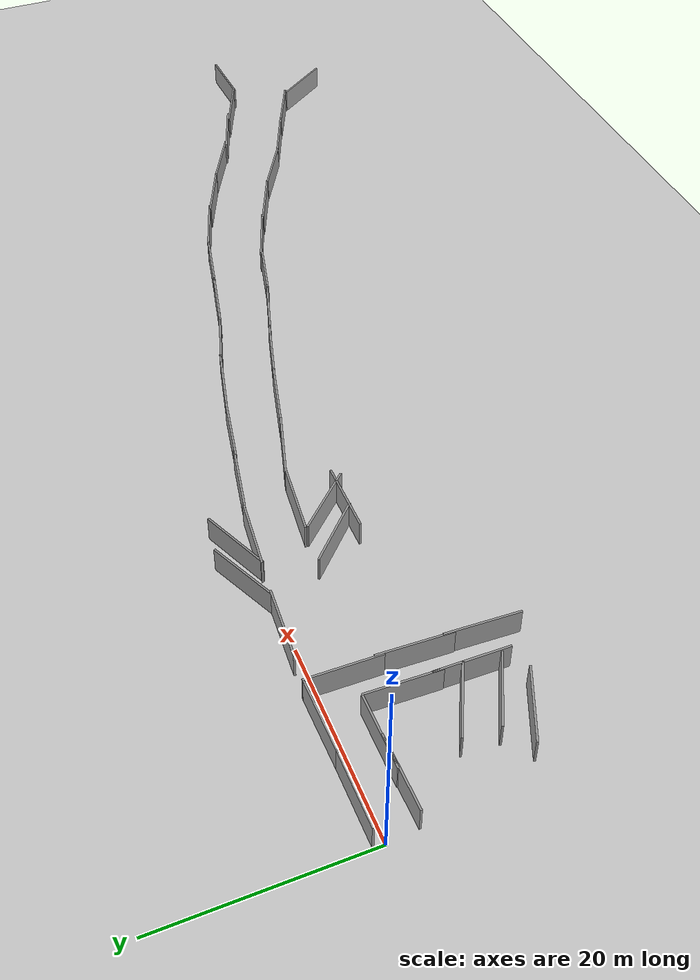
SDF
<sdf version="1.4">
 <world name="default">
  <light name="sun" type="directional">
   <pose>0 0 10 0 -0 0</pose>
   <diffuse>0.8 0.8 0.8 1</diffuse>
   <specular>0.2 0.2 0.2 1</specular>
   <attenuation>
    <range>1000</range>
    <constant>0.9</constant>
    <linear>0.01</linear>
    <quadratic>0.001</quadratic>
   </attenuation>
   <direction>-0.5 0.1 -0.9</direction>
  </light>
  <model name="ground_plane">
   <static>1</static>
   <link name="link">
    <collision name="collision">
     <geometry><plane><normal>0 0 1</normal><size>100 100</size></plane></geometry>
     <surface><friction><ode><mu>100</mu><mu2>50</mu2></ode></friction></surface>
    </collision>
    <visual name="visual">
     <cast_shadows>0</cast_shadows>
     <geometry><plane><normal>0 0 1</normal><size>100 100</size></plane></geometry>
     <material>
      <script><uri>file://media/materials/scripts/gazebo.material</uri><name>Gazebo/Grey</name></script>
     </material>
    </visual>
    <velocity_decay><linear>0</linear><angular>0</angular></velocity_decay>
   </link>
  </model>
  <physics type="ode">
   <max_step_size>0.001</max_step_size>
   <real_time_factor>1</real_time_factor>
   <real_time_update_rate>1000</real_time_update_rate>
   <gravity>0 0 -9.8</gravity>
  </physics>
  <scene><ambient>0.4 0.4 0.4 1</ambient><background>0.7 0.7 0.7 1</background><shadows>1</shadows></scene>
  <spherical_coordinates>
   <surface_model>EARTH_WGS84</surface_model>
   <latitude_deg>0</latitude_deg>
   <longitude_deg>0</longitude_deg>
   <elevation>0</elevation>
   <heading_deg>0</heading_deg>
  </spherical_coordinates>
  <model name="grey_wall">
   <static>1</static>
   <link name="link">
    <pose>0 0 1.4 0 -0 0</pose>
    <collision name="collision"><geometry><box><size>7.5 0.2 2.8</size></box></geometry></collision>
    <visual name="visual">
     <cast_shadows>0</cast_shadows>
     <geometry><box><size>7.5 0.2 2.8</size></box></geometry>
     <material>
      <script>
       <uri>model://grey_wall/materials/scripts</uri>
       <uri>model://grey_wall/materials/textures</uri>
       <name>vrc/grey_wall</name>
      </script>
     </material>
    </visual>
    <velocity_decay><linear>0</linear><angular>0</angular></velocity_decay>
   </link>
   <pose>4 1 -0 0 -0 0.004023</pose>
  </model>
  <model name="grey_wall_0">
   <static>1</static>
   <link name="link">
    <pose>0 0 1.4 0 -0 0</pose>
    <collision name="collision"><geometry><box><size>7.5 0.2 2.8</size></box></geometry></collision>
    <visual name="visual">
     <cast_shadows>0</cast_shadows>
     <geometry><box><size>7.5 0.2 2.8</size></box></geometry>
     <material>
      <script>
       <uri>model://grey_wall/materials/scripts</uri>
       <uri>model://grey_wall/materials/textures</uri>
       <name>vrc/grey_wall</name>
      </script>
     </material>
    </visual>
    <velocity_decay><linear>0</linear><angular>0</angular></velocity_decay>
   </link>
   <pose>4 -3 0 0 -0 0.015073</pose>
  </model>
  <model name="grey_wall_5">
   <static>1</static>
   <link name="link">
    <pose>0 0 1.4 0 -0 0</pose>
    <collision name="collision"><geometry><box><size>7.5 0.2 2.8</size></box></geometry></collision>
    <visual name="visual">
     <cast_shadows>0</cast_shadows>
     <geometry><box><size>7.5 0.2 2.8</size></box></geometry>
     <material>
      <script>
       <uri>model://grey_wall/materials/scripts</uri>
       <uri>model://grey_wall/materials/textures</uri>
       <name>vrc/grey_wall</name>
      </script>
     </material>
    </visual>
    <velocity_decay><linear>0</linear><angular>0</angular></velocity_decay>
   </link>
   <pose>11.147 1.06782 0 0 -0 0.015229</pose>
  </model>
  <model name="grey_wall_6">
   <static>1</static>
   <link name="link">
    <pose>0 0 1.4 0 -0 0</pose>
    <collision name="collision"><geometry><box><size>7.5 0.2 2.8</size></box></geometry></collision>
    <visual name="visual">
     <cast_shadows>0</cast_shadows>
     <geometry><box><size>7.5 0.2 2.8</size></box></geometry>
     <material>
      <script>
       <uri>model://grey_wall/materials/scripts</uri>
       <uri>model://grey_wall/materials/textures</uri>
       <name>vrc/grey_wall</name>
      </script>
     </material>
    </visual>
    <velocity_decay><linear>0</linear><angular>0</angular></velocity_decay>
   </link>
   <pose>8.05684 -2.89826 0 0 -0 0.001344</pose>
  </model>
  <model name="grey_wall_7">
   <static>1</static>
   <link name="link">
    <pose>0 0 1.4 0 -0 0</pose>
    <collision name="collision"><geometry><box><size>7.5 0.2 2.8</size></box></geometry></collision>
    <visual name="visual">
     <cast_shadows>0</cast_shadows>
     <geometry><box><size>7.5 0.2 2.8</size></box></geometry>
     <material>
      <script>
       <uri>model://grey_wall/materials/scripts</uri>
       <uri>model://grey_wall/materials/textures</uri>
       <name>vrc/grey_wall</name>
      </script>
     </material>
    </visual>
    <velocity_decay><linear>0</linear><angular>0</angular></velocity_decay>
   </link>
   <pose>5.74725 -15.748 -0 0 0 -0.406682</pose>
  </model>
  <model name="grey_wall_8">
   <static>1</static>
   <link name="link">
    <pose>0 0 1.4 0 -0 0</pose>
    <collision name="collision"><geometry><box><size>7.5 0.2 2.8</size></box></geometry></collision>
    <visual name="visual">
     <cast_shadows>0</cast_shadows>
     <geometry><box><size>7.5 0.2 2.8</size></box></geometry>
     <material>
      <script>
       <uri>model://grey_wall/materials/scripts</uri>
       <uri>model://grey_wall/materials/textures</uri>
       <name>vrc/grey_wall</name>
      </script>
     </material>
    </visual>
    <velocity_decay><linear>0</linear><angular>0</angular></velocity_decay>
   </link>
   <pose>8.3046 -10.4538 0 0 0 -0.455487</pose>
  </model>
  <model name="grey_wall_9">
   <static>1</static>
   <link name="link">
    <pose>0 0 1.4 0 -0 0</pose>
    <collision name="collision"><geometry><box><size>7.5 0.2 2.8</size></box></geometry></collision>
    <visual name="visual">
     <cast_shadows>0</cast_shadows>
     <geometry><box><size>7.5 0.2 2.8</size></box></geometry>
     <material>
      <script>
       <uri>model://grey_wall/materials/scripts</uri>
       <uri>model://grey_wall/materials/textures</uri>
       <name>vrc/grey_wall</name>
      </script>
     </material>
    </visual>
    <velocity_decay><linear>0</linear><angular>0</angular></velocity_decay>
   </link>
   <pose>14.9187 -9.12565 0 0 -0 1.53246</pose>
  </model>
  <model name="grey_wall_10">
   <static>1</static>
   <link name="link">
    <pose>0 0 1.4 0 -0 0</pose>
    <collision name="collision"><geometry><box><size>7.5 0.2 2.8</size></box></geometry></collision>
    <visual name="visual">
     <cast_shadows>0</cast_shadows>
     <geometry><box><size>7.5 0.2 2.8</size></box></geometry>
     <material>
      <script>
       <uri>model://grey_wall/materials/scripts</uri>
       <uri>model://grey_wall/materials/textures</uri>
       <name>vrc/grey_wall</name>
      </script>
     </material>
    </visual>
    <velocity_decay><linear>0</linear><angular>0</angular></velocity_decay>
   </link>
   <pose>8.06591 -14.0273 0 0 0 -0.464024</pose>
  </model>
  <model name="grey_wall_11">
   <static>1</static>
   <link name="link">
    <pose>0 0 1.4 0 -0 0</pose>
    <collision name="collision"><geometry><box><size>7.5 0.2 2.8</size></box></geometry></collision>
    <visual name="visual">
     <cast_shadows>0</cast_shadows>
     <geometry><box><size>7.5 0.2 2.8</size></box></geometry>
     <material>
      <script>
       <uri>model://grey_wall/materials/scripts</uri>
       <uri>model://grey_wall/materials/textures</uri>
       <name>vrc/grey_wall</name>
      </script>
     </material>
    </visual>
    <velocity_decay><linear>0</linear><angular>0</angular></velocity_decay>
   </link>
   <pose>11.6441 -12.9636 0 0 0 -1.58132</pose>
  </model>
  <model name="grey_wall_12">
   <static>1</static>
   <link name="link">
    <pose>0 0 1.4 0 -0 0</pose>
    <collision name="collision"><geometry><box><size>7.5 0.2 2.8</size></box></geometry></collision>
    <visual name="visual">
     <cast_shadows>0</cast_shadows>
     <geometry><box><size>7.5 0.2 2.8</size></box></geometry>
     <material>
      <script>
       <uri>model://grey_wall/materials/scripts</uri>
       <uri>model://grey_wall/materials/textures</uri>
       <name>vrc/grey_wall</name>
      </script>
     </material>
    </visual>
    <velocity_decay><linear>0</linear><angular>0</angular></velocity_decay>
   </link>
   <pose>11.7134 -6.58756 0 0 0 -1.59906</pose>
  </model>
  <model name="grey_wall_13">
   <static>1</static>
   <link name="link">
    <pose>0 0 1.4 0 -0 0</pose>
    <collision name="collision"><geometry><box><size>7.5 0.2 2.8</size></box></geometry></collision>
    <visual name="visual">
     <cast_shadows>0</cast_shadows>
     <geometry><box><size>7.5 0.2 2.8</size></box></geometry>
     <material>
      <script>
       <uri>model://grey_wall/materials/scripts</uri>
       <uri>model://grey_wall/materials/textures</uri>
       <name>vrc/grey_wall</name>
      </script>
     </material>
    </visual>
    <velocity_decay><linear>0</linear><angular>0</angular></velocity_decay>
   </link>
   <pose>14.9661 -2.52943 0 0 0 -1.5871</pose>
  </model>
  <model name="grey_wall_14">
   <static>1</static>
   <link name="link">
    <pose>0 0 1.4 0 -0 0</pose>
    <collision name="collision"><geometry><box><size>7.5 0.2 2.8</size></box></geometry></collision>
    <visual name="visual">
     <cast_shadows>0</cast_shadows>
     <geometry><box><size>7.5 0.2 2.8</size></box></geometry>
     <material>
      <script>
       <uri>model://grey_wall/materials/scripts</uri>
       <uri>model://grey_wall/materials/textures</uri>
       <name>vrc/grey_wall</name>
      </script>
     </material>
    </visual>
    <velocity_decay><linear>0</linear><angular>0</angular></velocity_decay>
   </link>
   <pose>21.294 0.694096 -0 0 0 -0.071412</pose>
  </model>
  <model name="grey_wall_15">
   <static>1</static>
   <link name="link">
    <pose>0 0 1.4 0 -0 0</pose>
    <collision name="collision"><geometry><box><size>7.5 0.2 2.8</size></box></geometry></collision>
    <visual name="visual">
     <cast_shadows>0</cast_shadows>
     <geometry><box><size>7.5 0.2 2.8</size></box></geometry>
     <material>
      <script>
       <uri>model://grey_wall/materials/scripts</uri>
       <uri>model://grey_wall/materials/textures</uri>
       <name>vrc/grey_wall</name>
      </script>
     </material>
    </visual>
    <velocity_decay><linear>0</linear><angular>0</angular></velocity_decay>
   </link>
   <pose>32.0009 -0.336757 -0 0 0 -0.10524</pose>
  </model>
  <model name="grey_wall_16">
   <static>1</static>
   <link name="link">
    <pose>0 0 1.4 0 -0 0</pose>
    <collision name="collision"><geometry><box><size>7.5 0.2 2.8</size></box></geometry></collision>
    <visual name="visual">
     <cast_shadows>0</cast_shadows>
     <geometry><box><size>7.5 0.2 2.8</size></box></geometry>
     <material>
      <script>
       <uri>model://grey_wall/materials/scripts</uri>
       <uri>model://grey_wall/materials/textures</uri>
       <name>vrc/grey_wall</name>
      </script>
     </material>
    </visual>
    <velocity_decay><linear>0</linear><angular>0</angular></velocity_decay>
   </link>
   <pose>39.2069 -1.49567 0 0 0 -0.194563</pose>
  </model>
  <model name="grey_wall_17">
   <static>1</static>
   <link name="link">
    <pose>0 0 1.4 0 -0 0</pose>
    <collision name="collision"><geometry><box><size>7.5 0.2 2.8</size></box></geometry></collision>
    <visual name="visual">
     <cast_shadows>0</cast_shadows>
     <geometry><box><size>7.5 0.2 2.8</size></box></geometry>
     <material>
      <script>
       <uri>model://grey_wall/materials/scripts</uri>
       <uri>model://grey_wall/materials/textures</uri>
       <name>vrc/grey_wall</name>
      </script>
     </material>
    </visual>
    <velocity_decay><linear>0</linear><angular>0</angular></velocity_decay>
   </link>
   <pose>45.9491 -2.90839 0 0 0 -0.195679</pose>
  </model>
  <model name="grey_wall_18">
   <static>1</static>
   <link name="link">
    <pose>0 0 1.4 0 -0 0</pose>
    <collision name="collision"><geometry><box><size>7.5 0.2 2.8</size></box></geometry></collision>
    <visual name="visual">
     <cast_shadows>0</cast_shadows>
     <geometry><box><size>7.5 0.2 2.8</size></box></geometry>
     <material>
      <script>
       <uri>model://grey_wall/materials/scripts</uri>
       <uri>model://grey_wall/materials/textures</uri>
       <name>vrc/grey_wall</name>
      </script>
     </material>
    </visual>
    <velocity_decay><linear>0</linear><angular>0</angular></velocity_decay>
   </link>
   <pose>53.1646 -4.52858 -0 0 0 -0.238812</pose>
  </model>
  <model name="grey_wall_19">
   <static>1</static>
   <link name="link">
    <pose>0 0 1.4 0 -0 0</pose>
    <collision name="collision"><geometry><box><size>7.5 0.2 2.8</size></box></geometry></collision>
    <visual name="visual">
     <cast_shadows>0</cast_shadows>
     <geometry><box><size>7.5 0.2 2.8</size></box></geometry>
     <material>
      <script>
       <uri>model://grey_wall/materials/scripts</uri>
       <uri>model://grey_wall/materials/textures</uri>
       <name>vrc/grey_wall</name>
      </script>
     </material>
    </visual>
    <velocity_decay><linear>0</linear><angular>0</angular></velocity_decay>
   </link>
   <pose>59.9382 -6.44824 0 0 0 -0.293893</pose>
  </model>
  <model name="grey_wall_20">
   <static>1</static>
   <link name="link">
    <pose>0 0 1.4 0 -0 0</pose>
    <collision name="collision"><geometry><box><size>7.5 0.2 2.8</size></box></geometry></collision>
    <visual name="visual">
     <cast_shadows>0</cast_shadows>
     <geometry><box><size>7.5 0.2 2.8</size></box></geometry>
     <material>
      <script>
       <uri>model://grey_wall/materials/scripts</uri>
       <uri>model://grey_wall/materials/textures</uri>
       <name>vrc/grey_wall</name>
      </script>
     </material>
    </visual>
    <velocity_decay><linear>0</linear><angular>0</angular></velocity_decay>
   </link>
   <pose>72.675 -9.60389 0 0 0 -0.219991</pose>
  </model>
  <model name="grey_wall_21">
   <static>1</static>
   <link name="link">
    <pose>0 0 1.4 0 -0 0</pose>
    <collision name="collision"><geometry><box><size>7.5 0.2 2.8</size></box></geometry></collision>
    <visual name="visual">
     <cast_shadows>0</cast_shadows>
     <geometry><box><size>7.5 0.2 2.8</size></box></geometry>
     <material>
      <script>
       <uri>model://grey_wall/materials/scripts</uri>
       <uri>model://grey_wall/materials/textures</uri>
       <name>vrc/grey_wall</name>
      </script>
     </material>
    </visual>
    <velocity_decay><linear>0</linear><angular>0</angular></velocity_decay>
   </link>
   <pose>79.6196 -11.5568 0 0 0 -0.332045</pose>
  </model>
  <model name="grey_wall_22">
   <static>1</static>
   <link name="link">
    <pose>0 0 1.4 0 -0 0</pose>
    <collision name="collision"><geometry><box><size>7.5 0.2 2.8</size></box></geometry></collision>
    <visual name="visual">
     <cast_shadows>0</cast_shadows>
     <geometry><box><size>7.5 0.2 2.8</size></box></geometry>
     <material>
      <script>
       <uri>model://grey_wall/materials/scripts</uri>
       <uri>model://grey_wall/materials/textures</uri>
       <name>vrc/grey_wall</name>
      </script>
     </material>
    </visual>
    <velocity_decay><linear>0</linear><angular>0</angular></velocity_decay>
   </link>
   <pose>85.8918 -14.1339 0 0 0 -0.411681</pose>
  </model>
  <model name="grey_wall_23">
   <static>1</static>
   <link name="link">
    <pose>0 0 1.4 0 -0 0</pose>
    <collision name="collision"><geometry><box><size>7.5 0.2 2.8</size></box></geometry></collision>
    <visual name="visual">
     <cast_shadows>0</cast_shadows>
     <geometry><box><size>7.5 0.2 2.8</size></box></geometry>
     <material>
      <script>
       <uri>model://grey_wall/materials/scripts</uri>
       <uri>model://grey_wall/materials/textures</uri>
       <name>vrc/grey_wall</name>
      </script>
     </material>
    </visual>
    <velocity_decay><linear>0</linear><angular>0</angular></velocity_decay>
   </link>
   <pose>66.0596 -8.08602 0 0 0 -0.226112</pose>
  </model>
  <model name="grey_wall_24">
   <static>1</static>
   <link name="link">
    <pose>0 0 1.4 0 -0 0</pose>
    <collision name="collision"><geometry><box><size>7.5 0.2 2.8</size></box></geometry></collision>
    <visual name="visual">
     <cast_shadows>0</cast_shadows>
     <geometry><box><size>7.5 0.2 2.8</size></box></geometry>
     <material>
      <script>
       <uri>model://grey_wall/materials/scripts</uri>
       <uri>model://grey_wall/materials/textures</uri>
       <name>vrc/grey_wall</name>
      </script>
     </material>
    </visual>
    <velocity_decay><linear>0</linear><angular>0</angular></velocity_decay>
   </link>
   <pose>14.7429 -15.5244 0 0 0 -1.61413</pose>
  </model>
  <model name="grey_wall_25">
   <static>1</static>
   <link name="link">
    <pose>0 0 1.4 0 -0 0</pose>
    <collision name="collision"><geometry><box><size>7.5 0.2 2.8</size></box></geometry></collision>
    <visual name="visual">
     <cast_shadows>0</cast_shadows>
     <geometry><box><size>7.5 0.2 2.8</size></box></geometry>
     <material>
      <script>
       <uri>model://grey_wall/materials/scripts</uri>
       <uri>model://grey_wall/materials/textures</uri>
       <name>vrc/grey_wall</name>
      </script>
     </material>
    </visual>
    <velocity_decay><linear>0</linear><angular>0</angular></velocity_decay>
   </link>
   <pose>29.4056 -7.45475 0 0 0 -0.774963</pose>
  </model>
  <model name="grey_wall_26">
   <static>1</static>
   <link name="link">
    <pose>0 0 1.4 0 -0 0</pose>
    <collision name="collision"><geometry><box><size>7.5 0.2 2.8</size></box></geometry></collision>
    <visual name="visual">
     <cast_shadows>0</cast_shadows>
     <geometry><box><size>7.5 0.2 2.8</size></box></geometry>
     <material>
      <script>
       <uri>model://grey_wall/materials/scripts</uri>
       <uri>model://grey_wall/materials/textures</uri>
       <name>vrc/grey_wall</name>
      </script>
     </material>
    </visual>
    <velocity_decay><linear>0</linear><angular>0</angular></velocity_decay>
   </link>
   <pose>33.4081 -8.04448 0 0 0 -0.809073</pose>
  </model>
  <model name="grey_wall_27">
   <static>1</static>
   <link name="link">
    <pose>0 0 1.4 0 -0 0</pose>
    <collision name="collision"><geometry><box><size>7.5 0.2 2.8</size></box></geometry></collision>
    <visual name="visual">
     <cast_shadows>0</cast_shadows>
     <geometry><box><size>7.5 0.2 2.8</size></box></geometry>
     <material>
      <script>
       <uri>model://grey_wall/materials/scripts</uri>
       <uri>model://grey_wall/materials/textures</uri>
       <name>vrc/grey_wall</name>
      </script>
     </material>
    </visual>
    <velocity_decay><linear>0</linear><angular>0</angular></velocity_decay>
   </link>
   <pose>34.5235 -5.54637 0 0 0 -0.111396</pose>
  </model>
  <model name="grey_wall_28">
   <static>1</static>
   <link name="link">
    <pose>0 0 1.4 0 -0 0</pose>
    <collision name="collision"><geometry><box><size>7.5 0.2 2.8</size></box></geometry></collision>
    <visual name="visual">
     <cast_shadows>0</cast_shadows>
     <geometry><box><size>7.5 0.2 2.8</size></box></geometry>
     <material>
      <script>
       <uri>model://grey_wall/materials/scripts</uri>
       <uri>model://grey_wall/materials/textures</uri>
       <name>vrc/grey_wall</name>
      </script>
     </material>
    </visual>
    <velocity_decay><linear>0</linear><angular>0</angular></velocity_decay>
   </link>
   <pose>41.8608 -6.98088 0 0 0 -0.286155</pose>
  </model>
  <model name="grey_wall_29">
   <static>1</static>
   <link name="link">
    <pose>0 0 1.4 0 -0 0</pose>
    <collision name="collision"><geometry><box><size>7.5 0.2 2.8</size></box></geometry></collision>
    <visual name="visual">
     <cast_shadows>0</cast_shadows>
     <geometry><box><size>7.5 0.2 2.8</size></box></geometry>
     <material>
      <script>
       <uri>model://grey_wall/materials/scripts</uri>
       <uri>model://grey_wall/materials/textures</uri>
       <name>vrc/grey_wall</name>
      </script>
     </material>
    </visual>
    <velocity_decay><linear>0</linear><angular>0</angular></velocity_decay>
   </link>
   <pose>49.0612 -8.95038 0 0 0 -0.255138</pose>
  </model>
  <model name="grey_wall_30">
   <static>1</static>
   <link name="link">
    <pose>0 0 1.4 0 -0 0</pose>
    <collision name="collision"><geometry><box><size>7.5 0.2 2.8</size></box></geometry></collision>
    <visual name="visual">
     <cast_shadows>0</cast_shadows>
     <geometry><box><size>7.5 0.2 2.8</size></box></geometry>
     <material>
      <script>
       <uri>model://grey_wall/materials/scripts</uri>
       <uri>model://grey_wall/materials/textures</uri>
       <name>vrc/grey_wall</name>
      </script>
     </material>
    </visual>
    <velocity_decay><linear>0</linear><angular>0</angular></velocity_decay>
   </link>
   <pose>55.8831 -10.8414 0 0 0 -0.279767</pose>
  </model>
  <model name="grey_wall_31">
   <static>1</static>
   <link name="link">
    <pose>0 0 1.4 0 -0 0</pose>
    <collision name="collision"><geometry><box><size>7.5 0.2 2.8</size></box></geometry></collision>
    <visual name="visual">
     <cast_shadows>0</cast_shadows>
     <geometry><box><size>7.5 0.2 2.8</size></box></geometry>
     <material>
      <script>
       <uri>model://grey_wall/materials/scripts</uri>
       <uri>model://grey_wall/materials/textures</uri>
       <name>vrc/grey_wall</name>
      </script>
     </material>
    </visual>
    <velocity_decay><linear>0</linear><angular>0</angular></velocity_decay>
   </link>
   <pose>62.546 -12.8943 0 0 0 -0.298828</pose>
  </model>
  <model name="grey_wall_32">
   <static>1</static>
   <link name="link">
    <pose>0 0 1.4 0 -0 0</pose>
    <collision name="collision"><geometry><box><size>7.5 0.2 2.8</size></box></geometry></collision>
    <visual name="visual">
     <cast_shadows>0</cast_shadows>
     <geometry><box><size>7.5 0.2 2.8</size></box></geometry>
     <material>
      <script>
       <uri>model://grey_wall/materials/scripts</uri>
       <uri>model://grey_wall/materials/textures</uri>
       <name>vrc/grey_wall</name>
      </script>
     </material>
    </visual>
    <velocity_decay><linear>0</linear><angular>0</angular></velocity_decay>
   </link>
   <pose>69.009 -14.768 0 0 0 -0.245711</pose>
  </model>
  <model name="grey_wall_33">
   <static>1</static>
   <link name="link">
    <pose>0 0 1.4 0 -0 0</pose>
    <collision name="collision"><geometry><box><size>7.5 0.2 2.8</size></box></geometry></collision>
    <visual name="visual">
     <cast_shadows>0</cast_shadows>
     <geometry><box><size>7.5 0.2 2.8</size></box></geometry>
     <material>
      <script>
       <uri>model://grey_wall/materials/scripts</uri>
       <uri>model://grey_wall/materials/textures</uri>
       <name>vrc/grey_wall</name>
      </script>
     </material>
    </visual>
    <velocity_decay><linear>0</linear><angular>0</angular></velocity_decay>
   </link>
   <pose>75.5608 -16.7105 0 0 0 -0.362211</pose>
  </model>
  <model name="grey_wall_34">
   <static>1</static>
   <link name="link">
    <pose>0 0 1.4 0 -0 0</pose>
    <collision name="collision"><geometry><box><size>7.5 0.2 2.8</size></box></geometry></collision>
    <visual name="visual">
     <cast_shadows>0</cast_shadows>
     <geometry><box><size>7.5 0.2 2.8</size></box></geometry>
     <material>
      <script>
       <uri>model://grey_wall/materials/scripts</uri>
       <uri>model://grey_wall/materials/textures</uri>
       <name>vrc/grey_wall</name>
      </script>
     </material>
    </visual>
    <velocity_decay><linear>0</linear><angular>0</angular></velocity_decay>
   </link>
   <pose>82.0981 -19.4832 -0 0 0 -0.41161</pose>
  </model>
  <model name="grey_wall_35">
   <static>1</static>
   <link name="link">
    <pose>0 0 1.4 0 -0 0</pose>
    <collision name="collision"><geometry><box><size>7.5 0.2 2.8</size></box></geometry></collision>
    <visual name="visual">
     <cast_shadows>0</cast_shadows>
     <geometry><box><size>7.5 0.2 2.8</size></box></geometry>
     <material>
      <script>
       <uri>model://grey_wall/materials/scripts</uri>
       <uri>model://grey_wall/materials/textures</uri>
       <name>vrc/grey_wall</name>
      </script>
     </material>
    </visual>
    <velocity_decay><linear>0</linear><angular>0</angular></velocity_decay>
   </link>
   <pose>33 -10 0 0 -0 0</pose>
  </model>
  <model name="grey_wall_1">
   <static>1</static>
   <link name="link">
    <pose>0 0 1.4 0 -0 0</pose>
    <collision name="collision"><geometry><box><size>7.5 0.2 2.8</size></box></geometry></collision>
    <visual name="visual">
     <cast_shadows>0</cast_shadows>
     <geometry><box><size>7.5 0.2 2.8</size></box></geometry>
     <material>
      <script>
       <uri>model://grey_wall/materials/scripts</uri>
       <uri>model://grey_wall/materials/textures</uri>
       <name>vrc/grey_wall</name>
      </script>
     </material>
    </visual>
    <velocity_decay><linear>0</linear><angular>0</angular></velocity_decay>
   </link>
   <pose>88.5567 -22.7746 0 0 0 -0.519337</pose>
  </model>
  <model name="grey_wall_2">
   <static>1</static>
   <link name="link">
    <pose>0 0 1.4 0 -0 0</pose>
    <collision name="collision"><geometry><box><size>7.5 0.2 2.8</size></box></geometry></collision>
    <visual name="visual">
     <cast_shadows>0</cast_shadows>
     <geometry><box><size>7.5 0.2 2.8</size></box></geometry>
     <material>
      <script>
       <uri>model://grey_wall/materials/scripts</uri>
       <uri>model://grey_wall/materials/textures</uri>
       <name>vrc/grey_wall</name>
      </script>
     </material>
    </visual>
    <velocity_decay><linear>0</linear><angular>0</angular></velocity_decay>
   </link>
   <pose>92.4685 -17.303 0 0 0 -0.480786</pose>
  </model>
  <model name="grey_wall_3">
   <static>1</static>
   <link name="link">
    <pose>0 0 1.4 0 -0 0</pose>
    <collision name="collision"><geometry><box><size>7.5 0.2 2.8</size></box></geometry></collision>
    <visual name="visual">
     <cast_shadows>0</cast_shadows>
     <geometry><box><size>7.5 0.2 2.8</size></box></geometry>
     <material>
      <script>
       <uri>model://grey_wall/materials/scripts</uri>
       <uri>model://grey_wall/materials/textures</uri>
       <name>vrc/grey_wall</name>
      </script>
     </material>
    </visual>
    <velocity_decay><linear>0</linear><angular>0</angular></velocity_decay>
   </link>
   <pose>94.9926 -25.9842 0 0 0 -0.40739</pose>
  </model>
  <model name="grey_wall_4">
   <static>1</static>
   <link name="link">
    <pose>0 0 1.4 0 -0 0</pose>
    <collision name="collision"><geometry><box><size>7.5 0.2 2.8</size></box></geometry></collision>
    <visual name="visual">
     <cast_shadows>0</cast_shadows>
     <geometry><box><size>7.5 0.2 2.8</size></box></geometry>
     <material>
      <script>
       <uri>model://grey_wall/materials/scripts</uri>
       <uri>model://grey_wall/materials/textures</uri>
       <name>vrc/grey_wall</name>
      </script>
     </material>
    </visual>
    <velocity_decay><linear>0</linear><angular>0</angular></velocity_decay>
   </link>
   <pose>98.5642 -20.1614 0 0 0 -0.352405</pose>
  </model>
  <model name="grey_wall_36">
   <static>1</static>
   <link name="link">
    <pose>0 0 1.4 0 -0 0</pose>
    <collision name="collision"><geometry><box><size>7.5 0.2 2.8</size></box></geometry></collision>
    <visual name="visual">
     <cast_shadows>0</cast_shadows>
     <geometry><box><size>7.5 0.2 2.8</size></box></geometry>
     <material>
      <script>
       <uri>model://grey_wall/materials/scripts</uri>
       <uri>model://grey_wall/materials/textures</uri>
       <name>vrc/grey_wall</name>
      </script>
     </material>
    </visual>
    <velocity_decay><linear>0</linear><angular>0</angular></velocity_decay>
   </link>
   <pose>101.365 -28.8655 0 0 0 -0.432119</pose>
  </model>
  <model name="grey_wall_37">
   <static>1</static>
   <link name="link">
    <pose>0 0 1.4 0 -0 0</pose>
    <collision name="collision"><geometry><box><size>7.5 0.2 2.8</size></box></geometry></collision>
    <visual name="visual">
     <cast_shadows>0</cast_shadows>
     <geometry><box><size>7.5 0.2 2.8</size></box></geometry>
     <material>
      <script>
       <uri>model://grey_wall/materials/scripts</uri>
       <uri>model://grey_wall/materials/textures</uri>
       <name>vrc/grey_wall</name>
      </script>
     </material>
    </visual>
    <velocity_decay><linear>0</linear><angular>0</angular></velocity_decay>
   </link>
   <pose>104.122 -22.5916 0 0 0 -0.405139</pose>
  </model>
  <model name="grey_wall_38">
   <static>1</static>
   <link name="link">
    <pose>0 0 1.4 0 -0 0</pose>
    <collision name="collision"><geometry><box><size>7.5 0.2 2.8</size></box></geometry></collision>
    <visual name="visual">
     <cast_shadows>0</cast_shadows>
     <geometry><box><size>7.5 0.2 2.8</size></box></geometry>
     <material>
      <script>
       <uri>model://grey_wall/materials/scripts</uri>
       <uri>model://grey_wall/materials/textures</uri>
       <name>vrc/grey_wall</name>
      </script>
     </material>
    </visual>
    <velocity_decay><linear>0</linear><angular>0</angular></velocity_decay>
   </link>
   <pose>106.363 -33.3846 0 0 0 -0.941959</pose>
  </model>
  <model name="grey_wall_39">
   <static>1</static>
   <link name="link">
    <pose>0 0 1.4 0 -0 0</pose>
    <collision name="collision"><geometry><box><size>7.5 0.2 2.8</size></box></geometry></collision>
    <visual name="visual">
     <cast_shadows>0</cast_shadows>
     <geometry><box><size>7.5 0.2 2.8</size></box></geometry>
     <material>
      <script>
       <uri>model://grey_wall/materials/scripts</uri>
       <uri>model://grey_wall/materials/textures</uri>
       <name>vrc/grey_wall</name>
      </script>
     </material>
    </visual>
    <velocity_decay><linear>0</linear><angular>0</angular></velocity_decay>
   </link>
   <pose>111.013 -24.0371 0 0 -0 0.032665</pose>
  </model>
  <model name="grey_wall_40">
   <static>1</static>
   <link name="link">
    <pose>0 0 1.4 0 -0 0</pose>
    <collision name="collision"><geometry><box><size>7.5 0.2 2.8</size></box></geometry></collision>
    <visual name="visual">
     <cast_shadows>0</cast_shadows>
     <geometry><box><size>7.5 0.2 2.8</size></box></geometry>
     <material>
      <script>
       <uri>model://grey_wall/materials/scripts</uri>
       <uri>model://grey_wall/materials/textures</uri>
       <name>vrc/grey_wall</name>
      </script>
     </material>
    </visual>
    <velocity_decay><linear>0</linear><angular>0</angular></velocity_decay>
   </link>
   <pose>28 2 0 0 -0 0.429583</pose>
  </model>
  <model name="grey_wall_41">
   <static>1</static>
   <link name="link">
    <pose>0 0 1.4 0 -0 0</pose>
    <collision name="collision"><geometry><box><size>7.5 0.2 2.8</size></box></geometry></collision>
    <visual name="visual">
     <cast_shadows>0</cast_shadows>
     <geometry><box><size>7.5 0.2 2.8</size></box></geometry>
     <material>
      <script>
       <uri>model://grey_wall/materials/scripts</uri>
       <uri>model://grey_wall/materials/textures</uri>
       <name>vrc/grey_wall</name>
      </script>
     </material>
    </visual>
    <velocity_decay><linear>0</linear><angular>0</angular></velocity_decay>
   </link>
   <pose>31.7946 1.43009 -0 0 -0 0.408837</pose>
  </model>
 </world>
</sdf>
